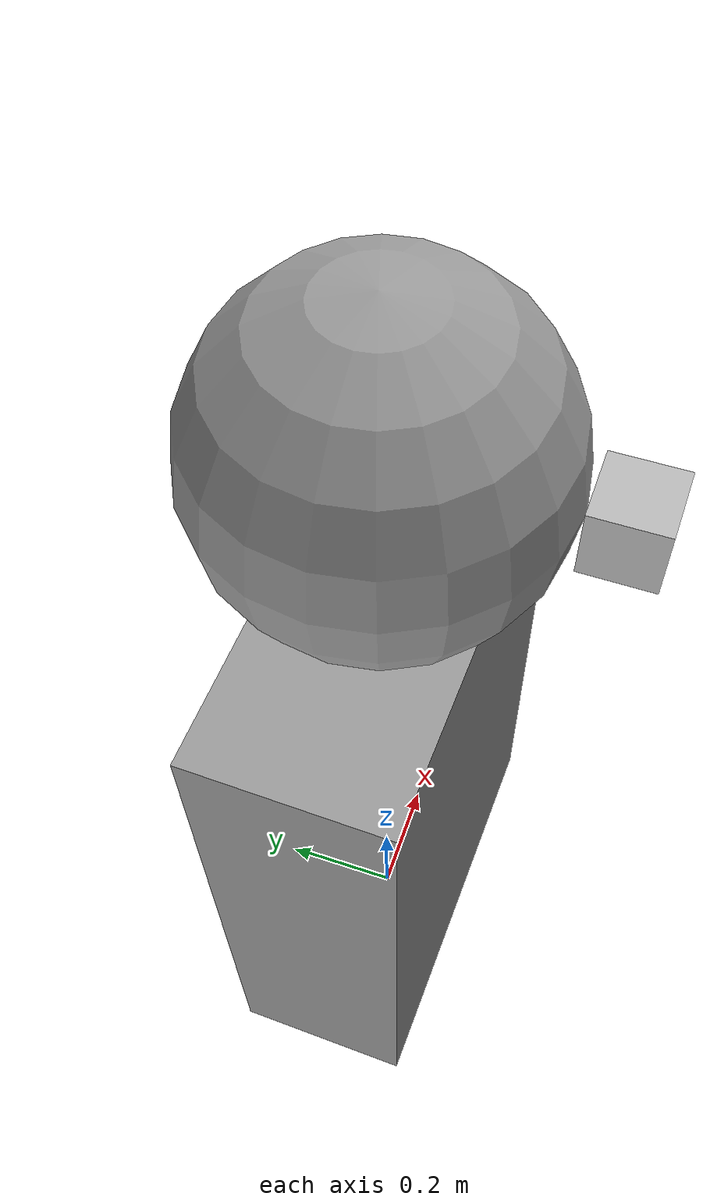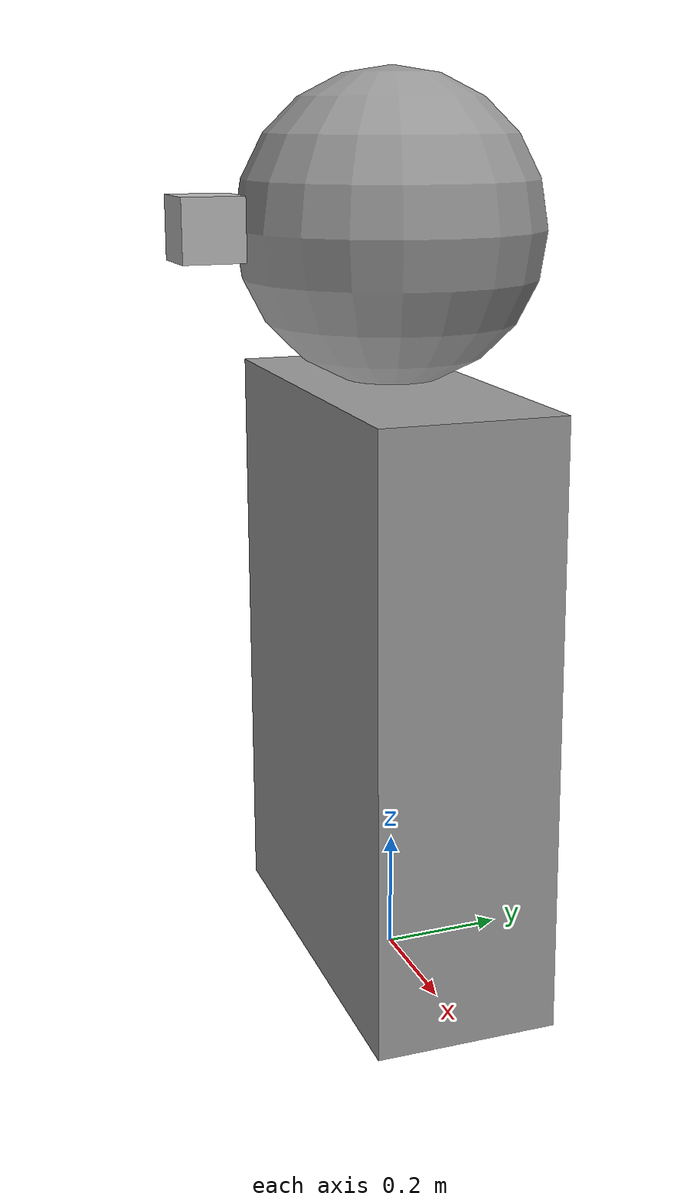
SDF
<?xml version='1.0'?>
<sdf version='1.7'>
  <model name='person_with_camera'>
    <link name='link_0'>
      <inertial>
        <mass>1</mass>
        <inertia>
          <ixx>0.166667</ixx>
          <ixy>0</ixy>
          <ixz>0</ixz>
          <iyy>0.166667</iyy>
          <iyz>0</iyz>
          <izz>0.166667</izz>
        </inertia>
        <pose>0 0 0 0 -0 0</pose>
      </inertial>
      <pose>-5e-06 3e-06 0.5 0 0 -0.03</pose>
      <gravity>1</gravity>
      <self_collide>0</self_collide>
      <kinematic>0</kinematic>
      <enable_wind>0</enable_wind>
      <visual name='visual'>
        <pose>0 0 0 0 -0 0</pose>
        <geometry>
          <box>
            <size>0.7 0.3 1</size>
          </box>
        </geometry>
        <material>
          <lighting>1</lighting>
          <script>
            <uri>file://media/materials/scripts/gazebo.material</uri>
            <name>Gazebo/Grey</name>
          </script>
          <shader type='pixel'>
            <normal_map>__default__</normal_map>
          </shader>
          <ambient>0.9 0.9 0.9 1</ambient>
          <diffuse>0.9 0.9 0.9 1</diffuse>
          <specular>0.01 0.01 0.01 1</specular>
          <emissive>0 0 0 1</emissive>
        </material>
        <transparency>0</transparency>
        <cast_shadows>1</cast_shadows>
      </visual>
      <collision name='collision'>
        <laser_retro>0</laser_retro>
        <max_contacts>10</max_contacts>
        <pose>0 0 0 0 -0 0</pose>
        <geometry>
          <box>
            <size>0.7 0.3 1</size>
          </box>
        </geometry>
        <surface>
          <friction>
            <ode>
              <mu>1</mu>
              <mu2>1</mu2>
              <fdir1>0 0 0</fdir1>
              <slip1>0</slip1>
              <slip2>0</slip2>
            </ode>
            <torsional>
              <coefficient>1</coefficient>
              <patch_radius>0</patch_radius>
              <surface_radius>0</surface_radius>
              <use_patch_radius>1</use_patch_radius>
              <ode>
                <slip>0</slip>
              </ode>
            </torsional>
          </friction>
          <bounce>
            <restitution_coefficient>0</restitution_coefficient>
            <threshold>1e+06</threshold>
          </bounce>
          <contact>
            <collide_without_contact>0</collide_without_contact>
            <collide_without_contact_bitmask>1</collide_without_contact_bitmask>
            <collide_bitmask>1</collide_bitmask>
            <ode>
              <soft_cfm>0</soft_cfm>
              <soft_erp>0.2</soft_erp>
              <kp>1e+13</kp>
              <kd>1</kd>
              <max_vel>0.01</max_vel>
              <min_depth>0</min_depth>
            </ode>
            <bullet>
              <split_impulse>1</split_impulse>
              <split_impulse_penetration_threshold>-0.01</split_impulse_penetration_threshold>
              <soft_cfm>0</soft_cfm>
              <soft_erp>0.2</soft_erp>
              <kp>1e+13</kp>
              <kd>1</kd>
            </bullet>
          </contact>
        </surface>
      </collision>
    </link>
    <link name='link_1'>
      <inertial>
        <mass>1</mass>
        <inertia>
          <ixx>0.1</ixx>
          <ixy>0</ixy>
          <ixz>0</ixz>
          <iyy>0.1</iyy>
          <iyz>0</iyz>
          <izz>0.1</izz>
        </inertia>
        <pose>0 0 0 0 -0 0</pose>
      </inertial>
      <pose>-0 0 1.25 0 -0 0</pose>
      <gravity>1</gravity>
      <self_collide>0</self_collide>
      <kinematic>0</kinematic>
      <enable_wind>0</enable_wind>
      <visual name='visual'>
        <pose>0 0 0 0 -0 0</pose>
        <geometry>
          <sphere>
            <radius>0.25</radius>
          </sphere>
        </geometry>
        <material>
          <lighting>1</lighting>
          <script>
            <uri>file://media/materials/scripts/gazebo.material</uri>
            <name>Gazebo/Grey</name>
          </script>
          <shader type='pixel'>
            <normal_map>__default__</normal_map>
          </shader>
          <ambient>0.9 0.9 0.9 1</ambient>
          <diffuse>0.9 0.9 0.9 1</diffuse>
          <specular>0.01 0.01 0.01 1</specular>
          <emissive>0 0 0 1</emissive>
        </material>
        <transparency>0</transparency>
        <cast_shadows>1</cast_shadows>
      </visual>
      <collision name='collision'>
        <laser_retro>0</laser_retro>
        <max_contacts>10</max_contacts>
        <pose>0 0 0 0 -0 0</pose>
        <geometry>
          <sphere>
            <radius>0.25</radius>
          </sphere>
        </geometry>
        <surface>
          <friction>
            <ode>
              <mu>1</mu>
              <mu2>1</mu2>
              <fdir1>0 0 0</fdir1>
              <slip1>0</slip1>
              <slip2>0</slip2>
            </ode>
            <torsional>
              <coefficient>1</coefficient>
              <patch_radius>0</patch_radius>
              <surface_radius>0</surface_radius>
              <use_patch_radius>1</use_patch_radius>
              <ode>
                <slip>0</slip>
              </ode>
            </torsional>
          </friction>
          <bounce>
            <restitution_coefficient>0</restitution_coefficient>
            <threshold>1e+06</threshold>
          </bounce>
          <contact>
            <collide_without_contact>0</collide_without_contact>
            <collide_without_contact_bitmask>1</collide_without_contact_bitmask>
            <collide_bitmask>1</collide_bitmask>
            <ode>
              <soft_cfm>0</soft_cfm>
              <soft_erp>0.2</soft_erp>
              <kp>1e+13</kp>
              <kd>1</kd>
              <max_vel>0.01</max_vel>
              <min_depth>0</min_depth>
            </ode>
            <bullet>
              <split_impulse>1</split_impulse>
              <split_impulse_penetration_threshold>-0.01</split_impulse_penetration_threshold>
              <soft_cfm>0</soft_cfm>
              <soft_erp>0.2</soft_erp>
              <kp>1e+13</kp>
              <kd>1</kd>
            </bullet>
          </contact>
        </surface>
      </collision>
    </link>
    <model name='camera'>
      <pose>-0.004068 -0.303868 1.25726 0 -0 -1.57955</pose>
      <link name='link'>
        <inertial>
          <mass>0.1</mass>
          <inertia>
            <ixx>0.000166667</ixx>
            <iyy>0.000166667</iyy>
            <izz>0.000166667</izz>
            <ixy>0</ixy>
            <ixz>0</ixz>
            <iyz>0</iyz>
          </inertia>
        </inertial>
        <collision name='collision'>
          <geometry>
            <box>
              <size>0.1 0.1 0.1</size>
            </box>
          </geometry>
        </collision>
        <visual name='visual'>
          <geometry>
            <box>
              <size>0.1 0.1 0.1</size>
            </box>
          </geometry>
        </visual>
        <sensor type="camera" name="camera">
        <camera>
              <horizontal_fov>2</horizontal_fov>
              <image>
                <width>1920</width>
                <height>1440</height>
              </image>
              <clip>
                <near>0.1</near>
                <far>100</far>
              </clip>
            </camera>
            <always_on>1</always_on>
            <update_rate>30</update_rate>
            <visualize>true</visualize>
          <plugin name="camera_controller" filename="libgazebo_ros_camera.so">
            <alwaysOn>true</alwaysOn>
            <updateRate>0.0</updateRate>
            <cameraName>camera</cameraName>
            <imageTopicName>image_raw</imageTopicName>
            <cameraInfoTopicName>camera_info</cameraInfoTopicName>
            <frameName>camera_link_optical</frameName>
            <!-- setting hackBaseline to anything but 0.0 will cause a misalignment
                between the gazebo sensor image and the frame it is supposed to
                be attached to -->
            <hackBaseline>0.0</hackBaseline>
            <distortionK1>0.0</distortionK1>
            <distortionK2>0.0</distortionK2>
            <distortionK3>0.0</distortionK3>
            <distortionT1>0.0</distortionT1>
            <distortionT2>0.0</distortionT2>
            <CxPrime>0</CxPrime>
            <Cx>0.0</Cx>
            <Cy>0.0</Cy>
            <focalLength>0.0</focalLength>
          </plugin>
        </sensor>

      </link>
    </model>
    <joint name='link_1_JOINT_0' type='fixed'>
      <parent>link_1</parent>
      <child>link_0</child>
      <pose>-0.02 0 0 0 -0 0</pose>
      <physics>
        <ode>
          <limit>
            <cfm>0</cfm>
            <erp>0.2</erp>
          </limit>
          <suspension>
            <cfm>0</cfm>
            <erp>0.2</erp>
          </suspension>
        </ode>
      </physics>
    </joint>
    <joint name='link_1_JOINT_1' type='fixed'>
      <parent>link_1</parent>
      <child>camera::link</child>
      <pose>0 0 0 0 -0 0</pose>
      <physics>
        <ode>
          <limit>
            <cfm>0</cfm>
            <erp>0.2</erp>
          </limit>
          <suspension>
            <cfm>0</cfm>
            <erp>0.2</erp>
          </suspension>
        </ode>
      </physics>
    </joint>
    <static>0</static>
    <allow_auto_disable>1</allow_auto_disable>
  </model>
</sdf>
